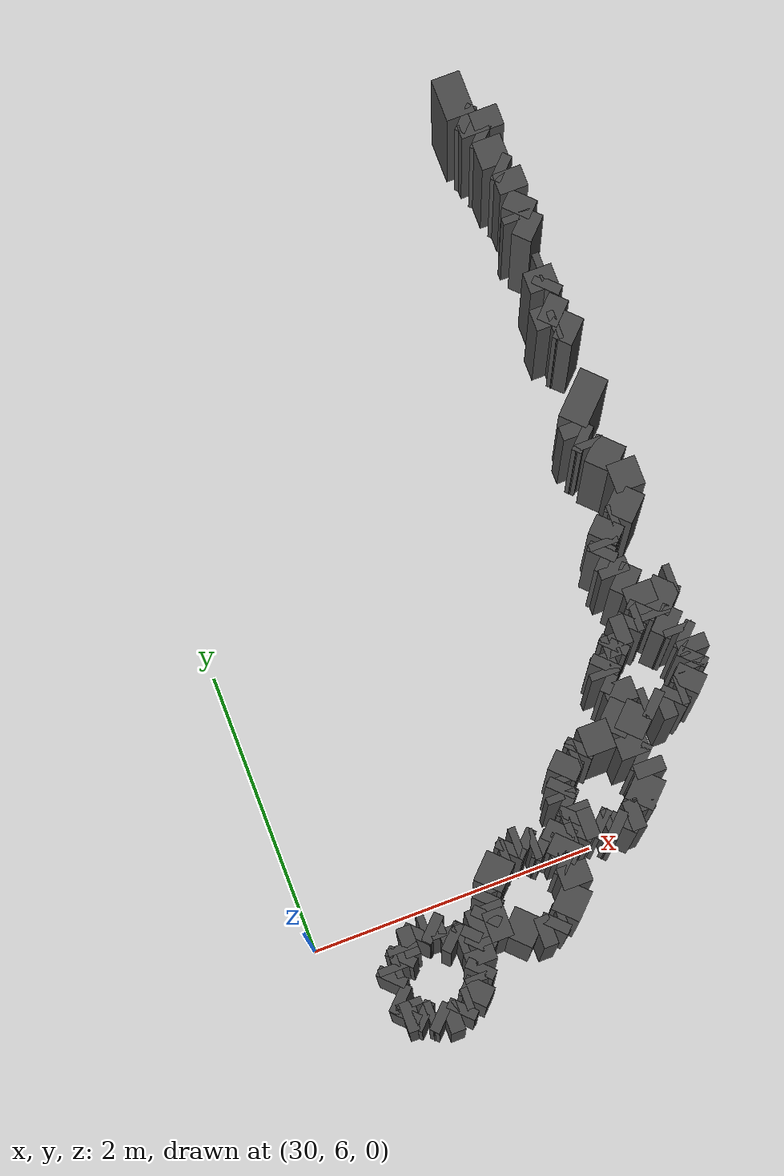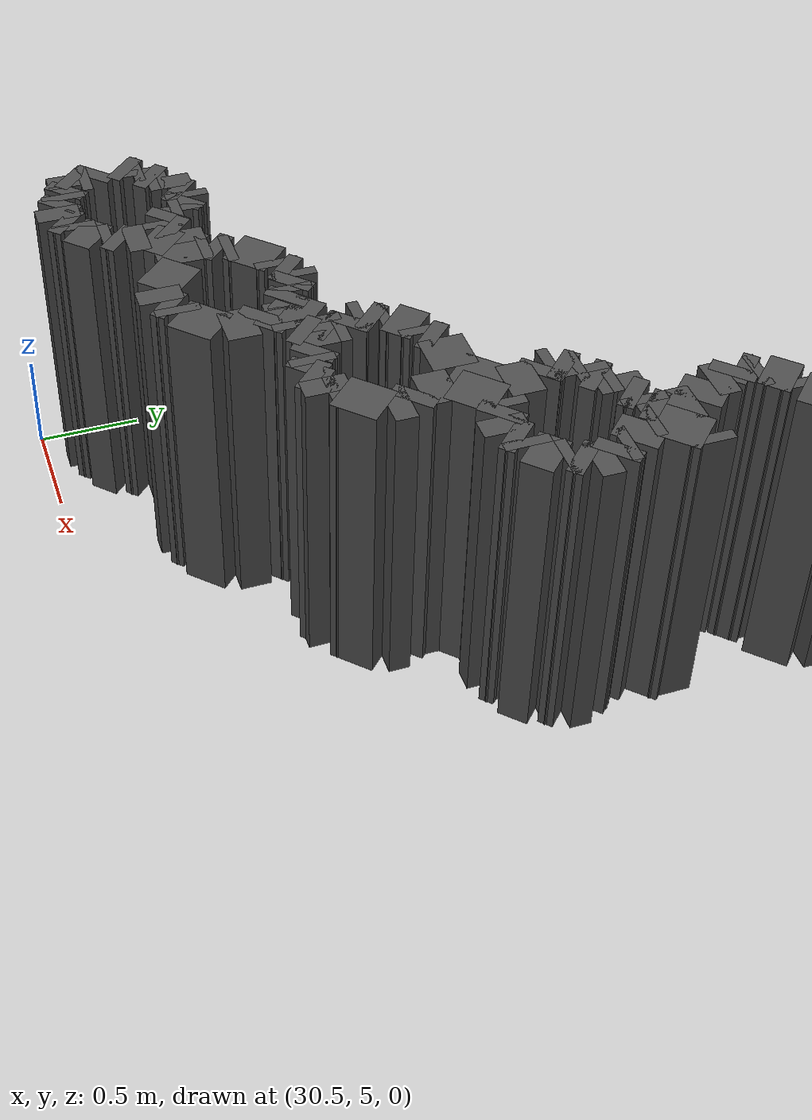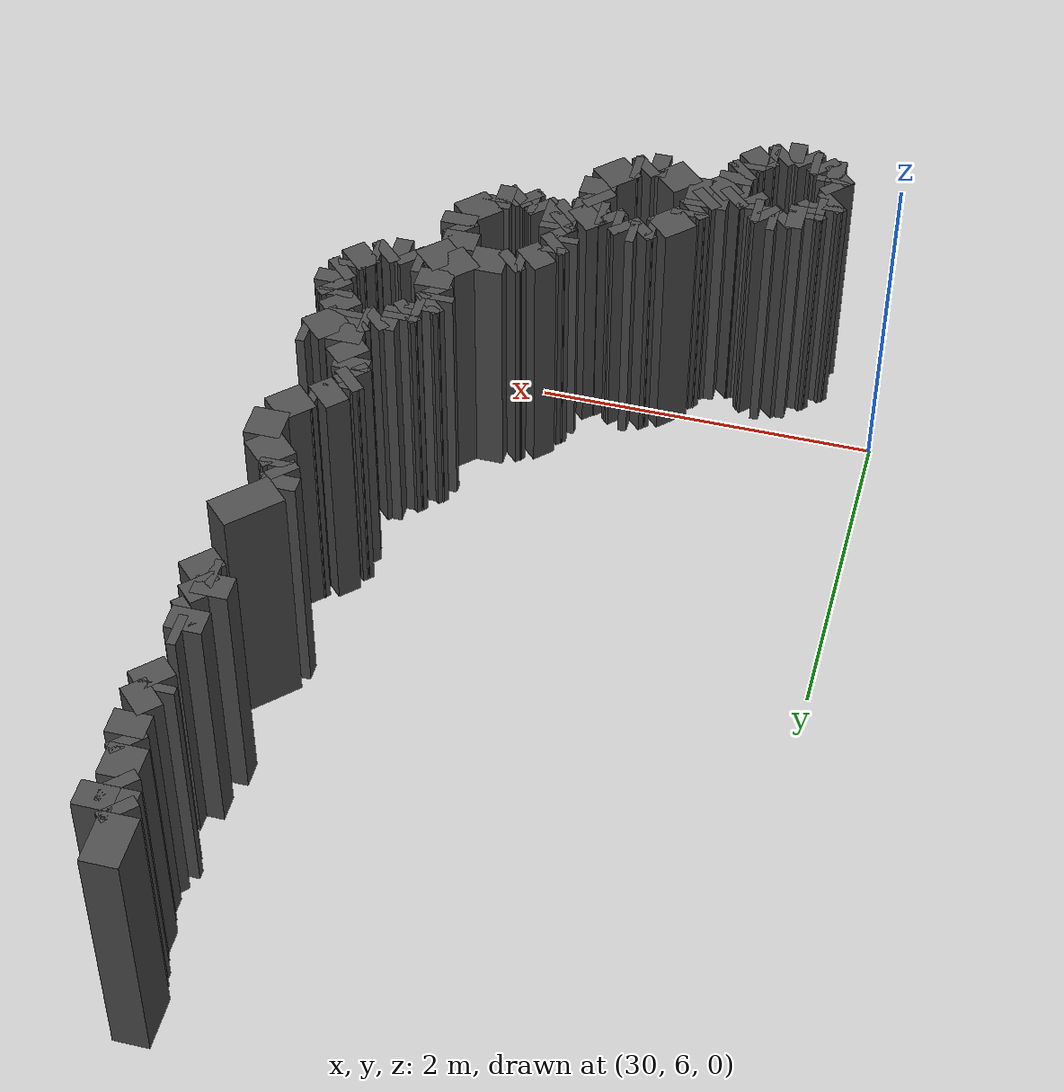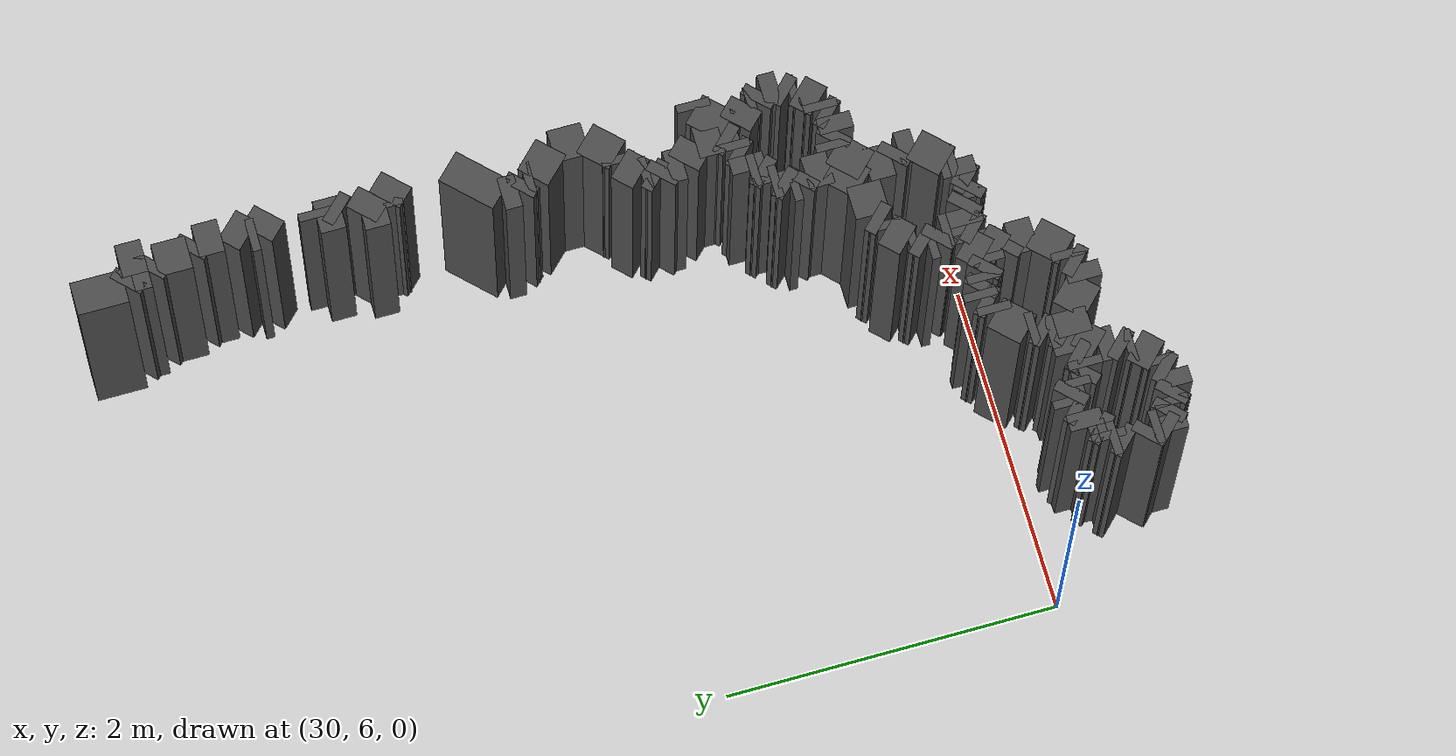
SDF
<sdf version="1.9">
 <model name="generated_walls">
  <static>true</static>
  <link name="wall_161_1346">
   <pose>30.425 5.575 0.75 0 0 0.785</pose>
   <collision name="collision"><geometry><box><size>0.071 0.2 1.5</size></box></geometry></collision>
   <visual name="visual">
    <geometry><box><size>0.071 0.2 1.5</size></box></geometry>
    <material><ambient>0.3 0.3 0.3 1</ambient></material>
   </visual>
  </link>
  <link name="wall_161_1347">
   <pose>30.450 5.625 0.75 0 0 1.571</pose>
   <collision name="collision"><geometry><box><size>0.050 0.2 1.5</size></box></geometry></collision>
   <visual name="visual">
    <geometry><box><size>0.050 0.2 1.5</size></box></geometry>
    <material><ambient>0.3 0.3 0.3 1</ambient></material>
   </visual>
  </link>
  <link name="wall_161_1348">
   <pose>30.475 5.650 0.75 0 0 0.000</pose>
   <collision name="collision"><geometry><box><size>0.050 0.2 1.5</size></box></geometry></collision>
   <visual name="visual">
    <geometry><box><size>0.050 0.2 1.5</size></box></geometry>
    <material><ambient>0.3 0.3 0.3 1</ambient></material>
   </visual>
  </link>
  <link name="wall_161_1349">
   <pose>30.525 5.675 0.75 0 0 0.785</pose>
   <collision name="collision"><geometry><box><size>0.071 0.2 1.5</size></box></geometry></collision>
   <visual name="visual">
    <geometry><box><size>0.071 0.2 1.5</size></box></geometry>
    <material><ambient>0.3 0.3 0.3 1</ambient></material>
   </visual>
  </link>
  <link name="wall_161_1350">
   <pose>30.550 5.725 0.75 0 0 1.571</pose>
   <collision name="collision"><geometry><box><size>0.050 0.2 1.5</size></box></geometry></collision>
   <visual name="visual">
    <geometry><box><size>0.050 0.2 1.5</size></box></geometry>
    <material><ambient>0.3 0.3 0.3 1</ambient></material>
   </visual>
  </link>
  <link name="wall_161_1351">
   <pose>30.600 5.750 0.75 0 0 0.000</pose>
   <collision name="collision"><geometry><box><size>0.100 0.2 1.5</size></box></geometry></collision>
   <visual name="visual">
    <geometry><box><size>0.100 0.2 1.5</size></box></geometry>
    <material><ambient>0.3 0.3 0.3 1</ambient></material>
   </visual>
  </link>
  <link name="wall_161_1352">
   <pose>30.675 5.775 0.75 0 0 0.785</pose>
   <collision name="collision"><geometry><box><size>0.071 0.2 1.5</size></box></geometry></collision>
   <visual name="visual">
    <geometry><box><size>0.071 0.2 1.5</size></box></geometry>
    <material><ambient>0.3 0.3 0.3 1</ambient></material>
   </visual>
  </link>
  <link name="wall_161_1353">
   <pose>30.725 5.800 0.75 0 0 0.000</pose>
   <collision name="collision"><geometry><box><size>0.050 0.2 1.5</size></box></geometry></collision>
   <visual name="visual">
    <geometry><box><size>0.050 0.2 1.5</size></box></geometry>
    <material><ambient>0.3 0.3 0.3 1</ambient></material>
   </visual>
  </link>
  <link name="wall_161_1354">
   <pose>30.775 5.775 0.75 0 0 -0.785</pose>
   <collision name="collision"><geometry><box><size>0.071 0.2 1.5</size></box></geometry></collision>
   <visual name="visual">
    <geometry><box><size>0.071 0.2 1.5</size></box></geometry>
    <material><ambient>0.3 0.3 0.3 1</ambient></material>
   </visual>
  </link>
  <link name="wall_161_1355">
   <pose>30.825 5.750 0.75 0 0 0.000</pose>
   <collision name="collision"><geometry><box><size>0.050 0.2 1.5</size></box></geometry></collision>
   <visual name="visual">
    <geometry><box><size>0.050 0.2 1.5</size></box></geometry>
    <material><ambient>0.3 0.3 0.3 1</ambient></material>
   </visual>
  </link>
  <link name="wall_161_1356">
   <pose>30.850 5.725 0.75 0 0 -1.571</pose>
   <collision name="collision"><geometry><box><size>0.050 0.2 1.5</size></box></geometry></collision>
   <visual name="visual">
    <geometry><box><size>0.050 0.2 1.5</size></box></geometry>
    <material><ambient>0.3 0.3 0.3 1</ambient></material>
   </visual>
  </link>
  <link name="wall_161_1357">
   <pose>30.875 5.675 0.75 0 0 -0.785</pose>
   <collision name="collision"><geometry><box><size>0.071 0.2 1.5</size></box></geometry></collision>
   <visual name="visual">
    <geometry><box><size>0.071 0.2 1.5</size></box></geometry>
    <material><ambient>0.3 0.3 0.3 1</ambient></material>
   </visual>
  </link>
  <link name="wall_161_1358">
   <pose>30.925 5.650 0.75 0 0 0.000</pose>
   <collision name="collision"><geometry><box><size>0.050 0.2 1.5</size></box></geometry></collision>
   <visual name="visual">
    <geometry><box><size>0.050 0.2 1.5</size></box></geometry>
    <material><ambient>0.3 0.3 0.3 1</ambient></material>
   </visual>
  </link>
  <link name="wall_161_1359">
   <pose>30.975 5.675 0.75 0 0 0.785</pose>
   <collision name="collision"><geometry><box><size>0.071 0.2 1.5</size></box></geometry></collision>
   <visual name="visual">
    <geometry><box><size>0.071 0.2 1.5</size></box></geometry>
    <material><ambient>0.3 0.3 0.3 1</ambient></material>
   </visual>
  </link>
  <link name="wall_161_1360">
   <pose>31.050 5.700 0.75 0 0 0.000</pose>
   <collision name="collision"><geometry><box><size>0.100 0.2 1.5</size></box></geometry></collision>
   <visual name="visual">
    <geometry><box><size>0.100 0.2 1.5</size></box></geometry>
    <material><ambient>0.3 0.3 0.3 1</ambient></material>
   </visual>
  </link>
  <link name="wall_161_1361">
   <pose>31.125 5.725 0.75 0 0 0.785</pose>
   <collision name="collision"><geometry><box><size>0.071 0.2 1.5</size></box></geometry></collision>
   <visual name="visual">
    <geometry><box><size>0.071 0.2 1.5</size></box></geometry>
    <material><ambient>0.3 0.3 0.3 1</ambient></material>
   </visual>
  </link>
  <link name="wall_161_1362">
   <pose>31.150 5.775 0.75 0 0 1.571</pose>
   <collision name="collision"><geometry><box><size>0.050 0.2 1.5</size></box></geometry></collision>
   <visual name="visual">
    <geometry><box><size>0.050 0.2 1.5</size></box></geometry>
    <material><ambient>0.3 0.3 0.3 1</ambient></material>
   </visual>
  </link>
  <link name="wall_161_1363">
   <pose>31.175 5.825 0.75 0 0 0.785</pose>
   <collision name="collision"><geometry><box><size>0.071 0.2 1.5</size></box></geometry></collision>
   <visual name="visual">
    <geometry><box><size>0.071 0.2 1.5</size></box></geometry>
    <material><ambient>0.3 0.3 0.3 1</ambient></material>
   </visual>
  </link>
  <link name="wall_161_1364">
   <pose>31.200 5.875 0.75 0 0 1.571</pose>
   <collision name="collision"><geometry><box><size>0.050 0.2 1.5</size></box></geometry></collision>
   <visual name="visual">
    <geometry><box><size>0.050 0.2 1.5</size></box></geometry>
    <material><ambient>0.3 0.3 0.3 1</ambient></material>
   </visual>
  </link>
  <link name="wall_161_1365">
   <pose>31.275 5.975 0.75 0 0 0.785</pose>
   <collision name="collision"><geometry><box><size>0.212 0.2 1.5</size></box></geometry></collision>
   <visual name="visual">
    <geometry><box><size>0.212 0.2 1.5</size></box></geometry>
    <material><ambient>0.3 0.3 0.3 1</ambient></material>
   </visual>
  </link>
  <link name="wall_161_1366">
   <pose>31.375 6.050 0.75 0 0 0.000</pose>
   <collision name="collision"><geometry><box><size>0.050 0.2 1.5</size></box></geometry></collision>
   <visual name="visual">
    <geometry><box><size>0.050 0.2 1.5</size></box></geometry>
    <material><ambient>0.3 0.3 0.3 1</ambient></material>
   </visual>
  </link>
  <link name="wall_161_1367">
   <pose>31.425 6.075 0.75 0 0 0.785</pose>
   <collision name="collision"><geometry><box><size>0.071 0.2 1.5</size></box></geometry></collision>
   <visual name="visual">
    <geometry><box><size>0.071 0.2 1.5</size></box></geometry>
    <material><ambient>0.3 0.3 0.3 1</ambient></material>
   </visual>
  </link>
  <link name="wall_161_1368">
   <pose>31.475 6.100 0.75 0 0 0.000</pose>
   <collision name="collision"><geometry><box><size>0.050 0.2 1.5</size></box></geometry></collision>
   <visual name="visual">
    <geometry><box><size>0.050 0.2 1.5</size></box></geometry>
    <material><ambient>0.3 0.3 0.3 1</ambient></material>
   </visual>
  </link>
  <link name="wall_161_1369">
   <pose>31.525 6.075 0.75 0 0 -0.785</pose>
   <collision name="collision"><geometry><box><size>0.071 0.2 1.5</size></box></geometry></collision>
   <visual name="visual">
    <geometry><box><size>0.071 0.2 1.5</size></box></geometry>
    <material><ambient>0.3 0.3 0.3 1</ambient></material>
   </visual>
  </link>
  <link name="wall_161_1370">
   <pose>31.575 6.050 0.75 0 0 0.000</pose>
   <collision name="collision"><geometry><box><size>0.050 0.2 1.5</size></box></geometry></collision>
   <visual name="visual">
    <geometry><box><size>0.050 0.2 1.5</size></box></geometry>
    <material><ambient>0.3 0.3 0.3 1</ambient></material>
   </visual>
  </link>
  <link name="wall_161_1371">
   <pose>31.625 6.025 0.75 0 0 -0.785</pose>
   <collision name="collision"><geometry><box><size>0.071 0.2 1.5</size></box></geometry></collision>
   <visual name="visual">
    <geometry><box><size>0.071 0.2 1.5</size></box></geometry>
    <material><ambient>0.3 0.3 0.3 1</ambient></material>
   </visual>
  </link>
  <link name="wall_161_1372">
   <pose>31.675 6.000 0.75 0 0 0.000</pose>
   <collision name="collision"><geometry><box><size>0.050 0.2 1.5</size></box></geometry></collision>
   <visual name="visual">
    <geometry><box><size>0.050 0.2 1.5</size></box></geometry>
    <material><ambient>0.3 0.3 0.3 1</ambient></material>
   </visual>
  </link>
  <link name="wall_161_1373">
   <pose>31.750 6.050 0.75 0 0 0.785</pose>
   <collision name="collision"><geometry><box><size>0.141 0.2 1.5</size></box></geometry></collision>
   <visual name="visual">
    <geometry><box><size>0.141 0.2 1.5</size></box></geometry>
    <material><ambient>0.3 0.3 0.3 1</ambient></material>
   </visual>
  </link>
  <link name="wall_161_1374">
   <pose>31.825 6.100 0.75 0 0 0.000</pose>
   <collision name="collision"><geometry><box><size>0.050 0.2 1.5</size></box></geometry></collision>
   <visual name="visual">
    <geometry><box><size>0.050 0.2 1.5</size></box></geometry>
    <material><ambient>0.3 0.3 0.3 1</ambient></material>
   </visual>
  </link>
  <link name="wall_161_1375">
   <pose>31.875 6.125 0.75 0 0 0.785</pose>
   <collision name="collision"><geometry><box><size>0.071 0.2 1.5</size></box></geometry></collision>
   <visual name="visual">
    <geometry><box><size>0.071 0.2 1.5</size></box></geometry>
    <material><ambient>0.3 0.3 0.3 1</ambient></material>
   </visual>
  </link>
  <link name="wall_161_1376">
   <pose>31.900 6.175 0.75 0 0 1.571</pose>
   <collision name="collision"><geometry><box><size>0.050 0.2 1.5</size></box></geometry></collision>
   <visual name="visual">
    <geometry><box><size>0.050 0.2 1.5</size></box></geometry>
    <material><ambient>0.3 0.3 0.3 1</ambient></material>
   </visual>
  </link>
  <link name="wall_161_1377">
   <pose>31.875 6.225 0.75 0 0 2.356</pose>
   <collision name="collision"><geometry><box><size>0.071 0.2 1.5</size></box></geometry></collision>
   <visual name="visual">
    <geometry><box><size>0.071 0.2 1.5</size></box></geometry>
    <material><ambient>0.3 0.3 0.3 1</ambient></material>
   </visual>
  </link>
  <link name="wall_161_1378">
   <pose>31.850 6.275 0.75 0 0 1.571</pose>
   <collision name="collision"><geometry><box><size>0.050 0.2 1.5</size></box></geometry></collision>
   <visual name="visual">
    <geometry><box><size>0.050 0.2 1.5</size></box></geometry>
    <material><ambient>0.3 0.3 0.3 1</ambient></material>
   </visual>
  </link>
  <link name="wall_161_1379">
   <pose>31.875 6.325 0.75 0 0 0.785</pose>
   <collision name="collision"><geometry><box><size>0.071 0.2 1.5</size></box></geometry></collision>
   <visual name="visual">
    <geometry><box><size>0.071 0.2 1.5</size></box></geometry>
    <material><ambient>0.3 0.3 0.3 1</ambient></material>
   </visual>
  </link>
  <link name="wall_161_1380">
   <pose>31.900 6.375 0.75 0 0 1.571</pose>
   <collision name="collision"><geometry><box><size>0.050 0.2 1.5</size></box></geometry></collision>
   <visual name="visual">
    <geometry><box><size>0.050 0.2 1.5</size></box></geometry>
    <material><ambient>0.3 0.3 0.3 1</ambient></material>
   </visual>
  </link>
  <link name="wall_161_1381">
   <pose>31.950 6.450 0.75 0 0 0.785</pose>
   <collision name="collision"><geometry><box><size>0.141 0.2 1.5</size></box></geometry></collision>
   <visual name="visual">
    <geometry><box><size>0.141 0.2 1.5</size></box></geometry>
    <material><ambient>0.3 0.3 0.3 1</ambient></material>
   </visual>
  </link>
  <link name="wall_161_1382">
   <pose>32.025 6.500 0.75 0 0 0.000</pose>
   <collision name="collision"><geometry><box><size>0.050 0.2 1.5</size></box></geometry></collision>
   <visual name="visual">
    <geometry><box><size>0.050 0.2 1.5</size></box></geometry>
    <material><ambient>0.3 0.3 0.3 1</ambient></material>
   </visual>
  </link>
  <link name="wall_161_1383">
   <pose>32.075 6.525 0.75 0 0 0.785</pose>
   <collision name="collision"><geometry><box><size>0.071 0.2 1.5</size></box></geometry></collision>
   <visual name="visual">
    <geometry><box><size>0.071 0.2 1.5</size></box></geometry>
    <material><ambient>0.3 0.3 0.3 1</ambient></material>
   </visual>
  </link>
  <link name="wall_161_1384">
   <pose>32.200 6.550 0.75 0 0 0.000</pose>
   <collision name="collision"><geometry><box><size>0.200 0.2 1.5</size></box></geometry></collision>
   <visual name="visual">
    <geometry><box><size>0.200 0.2 1.5</size></box></geometry>
    <material><ambient>0.3 0.3 0.3 1</ambient></material>
   </visual>
  </link>
  <link name="wall_161_1385">
   <pose>32.375 6.625 0.75 0 0 0.785</pose>
   <collision name="collision"><geometry><box><size>0.212 0.2 1.5</size></box></geometry></collision>
   <visual name="visual">
    <geometry><box><size>0.212 0.2 1.5</size></box></geometry>
    <material><ambient>0.3 0.3 0.3 1</ambient></material>
   </visual>
  </link>
  <link name="wall_161_1386">
   <pose>32.450 6.775 0.75 0 0 1.571</pose>
   <collision name="collision"><geometry><box><size>0.150 0.2 1.5</size></box></geometry></collision>
   <visual name="visual">
    <geometry><box><size>0.150 0.2 1.5</size></box></geometry>
    <material><ambient>0.3 0.3 0.3 1</ambient></material>
   </visual>
  </link>
  <link name="wall_161_1387">
   <pose>32.425 6.875 0.75 0 0 2.356</pose>
   <collision name="collision"><geometry><box><size>0.071 0.2 1.5</size></box></geometry></collision>
   <visual name="visual">
    <geometry><box><size>0.071 0.2 1.5</size></box></geometry>
    <material><ambient>0.3 0.3 0.3 1</ambient></material>
   </visual>
  </link>
  <link name="wall_161_1388">
   <pose>32.400 6.925 0.75 0 0 1.571</pose>
   <collision name="collision"><geometry><box><size>0.050 0.2 1.5</size></box></geometry></collision>
   <visual name="visual">
    <geometry><box><size>0.050 0.2 1.5</size></box></geometry>
    <material><ambient>0.3 0.3 0.3 1</ambient></material>
   </visual>
  </link>
  <link name="wall_161_1389">
   <pose>32.425 6.975 0.75 0 0 0.785</pose>
   <collision name="collision"><geometry><box><size>0.071 0.2 1.5</size></box></geometry></collision>
   <visual name="visual">
    <geometry><box><size>0.071 0.2 1.5</size></box></geometry>
    <material><ambient>0.3 0.3 0.3 1</ambient></material>
   </visual>
  </link>
  <link name="wall_161_1390">
   <pose>32.450 7.025 0.75 0 0 1.571</pose>
   <collision name="collision"><geometry><box><size>0.050 0.2 1.5</size></box></geometry></collision>
   <visual name="visual">
    <geometry><box><size>0.050 0.2 1.5</size></box></geometry>
    <material><ambient>0.3 0.3 0.3 1</ambient></material>
   </visual>
  </link>
  <link name="wall_161_1391">
   <pose>32.475 7.050 0.75 0 0 0.000</pose>
   <collision name="collision"><geometry><box><size>0.050 0.2 1.5</size></box></geometry></collision>
   <visual name="visual">
    <geometry><box><size>0.050 0.2 1.5</size></box></geometry>
    <material><ambient>0.3 0.3 0.3 1</ambient></material>
   </visual>
  </link>
  <link name="wall_161_1392">
   <pose>32.525 7.075 0.75 0 0 0.785</pose>
   <collision name="collision"><geometry><box><size>0.071 0.2 1.5</size></box></geometry></collision>
   <visual name="visual">
    <geometry><box><size>0.071 0.2 1.5</size></box></geometry>
    <material><ambient>0.3 0.3 0.3 1</ambient></material>
   </visual>
  </link>
  <link name="wall_161_1393">
   <pose>32.550 7.125 0.75 0 0 1.571</pose>
   <collision name="collision"><geometry><box><size>0.050 0.2 1.5</size></box></geometry></collision>
   <visual name="visual">
    <geometry><box><size>0.050 0.2 1.5</size></box></geometry>
    <material><ambient>0.3 0.3 0.3 1</ambient></material>
   </visual>
  </link>
  <link name="wall_161_1394">
   <pose>32.600 7.150 0.75 0 0 0.000</pose>
   <collision name="collision"><geometry><box><size>0.100 0.2 1.5</size></box></geometry></collision>
   <visual name="visual">
    <geometry><box><size>0.100 0.2 1.5</size></box></geometry>
    <material><ambient>0.3 0.3 0.3 1</ambient></material>
   </visual>
  </link>
  <link name="wall_161_1395">
   <pose>32.675 7.175 0.75 0 0 0.785</pose>
   <collision name="collision"><geometry><box><size>0.071 0.2 1.5</size></box></geometry></collision>
   <visual name="visual">
    <geometry><box><size>0.071 0.2 1.5</size></box></geometry>
    <material><ambient>0.3 0.3 0.3 1</ambient></material>
   </visual>
  </link>
  <link name="wall_161_1396">
   <pose>32.725 7.200 0.75 0 0 0.000</pose>
   <collision name="collision"><geometry><box><size>0.050 0.2 1.5</size></box></geometry></collision>
   <visual name="visual">
    <geometry><box><size>0.050 0.2 1.5</size></box></geometry>
    <material><ambient>0.3 0.3 0.3 1</ambient></material>
   </visual>
  </link>
  <link name="wall_161_1397">
   <pose>32.775 7.225 0.75 0 0 0.785</pose>
   <collision name="collision"><geometry><box><size>0.071 0.2 1.5</size></box></geometry></collision>
   <visual name="visual">
    <geometry><box><size>0.071 0.2 1.5</size></box></geometry>
    <material><ambient>0.3 0.3 0.3 1</ambient></material>
   </visual>
  </link>
  <link name="wall_161_1398">
   <pose>32.800 7.325 0.75 0 0 1.571</pose>
   <collision name="collision"><geometry><box><size>0.150 0.2 1.5</size></box></geometry></collision>
   <visual name="visual">
    <geometry><box><size>0.150 0.2 1.5</size></box></geometry>
    <material><ambient>0.3 0.3 0.3 1</ambient></material>
   </visual>
  </link>
  <link name="wall_161_1399">
   <pose>32.750 7.450 0.75 0 0 2.356</pose>
   <collision name="collision"><geometry><box><size>0.141 0.2 1.5</size></box></geometry></collision>
   <visual name="visual">
    <geometry><box><size>0.141 0.2 1.5</size></box></geometry>
    <material><ambient>0.3 0.3 0.3 1</ambient></material>
   </visual>
  </link>
  <link name="wall_161_1400">
   <pose>32.700 7.550 0.75 0 0 1.571</pose>
   <collision name="collision"><geometry><box><size>0.100 0.2 1.5</size></box></geometry></collision>
   <visual name="visual">
    <geometry><box><size>0.100 0.2 1.5</size></box></geometry>
    <material><ambient>0.3 0.3 0.3 1</ambient></material>
   </visual>
  </link>
  <link name="wall_161_1401">
   <pose>32.675 7.625 0.75 0 0 2.356</pose>
   <collision name="collision"><geometry><box><size>0.071 0.2 1.5</size></box></geometry></collision>
   <visual name="visual">
    <geometry><box><size>0.071 0.2 1.5</size></box></geometry>
    <material><ambient>0.3 0.3 0.3 1</ambient></material>
   </visual>
  </link>
  <link name="wall_161_1402">
   <pose>32.675 7.675 0.75 0 0 0.785</pose>
   <collision name="collision"><geometry><box><size>0.071 0.2 1.5</size></box></geometry></collision>
   <visual name="visual">
    <geometry><box><size>0.071 0.2 1.5</size></box></geometry>
    <material><ambient>0.3 0.3 0.3 1</ambient></material>
   </visual>
  </link>
  <link name="wall_161_1403">
   <pose>32.700 7.725 0.75 0 0 1.571</pose>
   <collision name="collision"><geometry><box><size>0.050 0.2 1.5</size></box></geometry></collision>
   <visual name="visual">
    <geometry><box><size>0.050 0.2 1.5</size></box></geometry>
    <material><ambient>0.3 0.3 0.3 1</ambient></material>
   </visual>
  </link>
  <link name="wall_161_1404">
   <pose>32.750 7.800 0.75 0 0 0.785</pose>
   <collision name="collision"><geometry><box><size>0.141 0.2 1.5</size></box></geometry></collision>
   <visual name="visual">
    <geometry><box><size>0.141 0.2 1.5</size></box></geometry>
    <material><ambient>0.3 0.3 0.3 1</ambient></material>
   </visual>
  </link>
  <link name="wall_161_1405">
   <pose>32.825 7.850 0.75 0 0 0.000</pose>
   <collision name="collision"><geometry><box><size>0.050 0.2 1.5</size></box></geometry></collision>
   <visual name="visual">
    <geometry><box><size>0.050 0.2 1.5</size></box></geometry>
    <material><ambient>0.3 0.3 0.3 1</ambient></material>
   </visual>
  </link>
  <link name="wall_161_1406">
   <pose>32.925 7.925 0.75 0 0 0.785</pose>
   <collision name="collision"><geometry><box><size>0.212 0.2 1.5</size></box></geometry></collision>
   <visual name="visual">
    <geometry><box><size>0.212 0.2 1.5</size></box></geometry>
    <material><ambient>0.3 0.3 0.3 1</ambient></material>
   </visual>
  </link>
  <link name="wall_161_1407">
   <pose>33.000 8.100 0.75 0 0 1.571</pose>
   <collision name="collision"><geometry><box><size>0.200 0.2 1.5</size></box></geometry></collision>
   <visual name="visual">
    <geometry><box><size>0.200 0.2 1.5</size></box></geometry>
    <material><ambient>0.3 0.3 0.3 1</ambient></material>
   </visual>
  </link>
  <link name="wall_161_1408">
   <pose>32.925 8.275 0.75 0 0 2.356</pose>
   <collision name="collision"><geometry><box><size>0.212 0.2 1.5</size></box></geometry></collision>
   <visual name="visual">
    <geometry><box><size>0.212 0.2 1.5</size></box></geometry>
    <material><ambient>0.3 0.3 0.3 1</ambient></material>
   </visual>
  </link>
  <link name="wall_161_1409">
   <pose>32.850 8.375 0.75 0 0 1.571</pose>
   <collision name="collision"><geometry><box><size>0.050 0.2 1.5</size></box></geometry></collision>
   <visual name="visual">
    <geometry><box><size>0.050 0.2 1.5</size></box></geometry>
    <material><ambient>0.3 0.3 0.3 1</ambient></material>
   </visual>
  </link>
  <link name="wall_161_1410">
   <pose>32.825 8.425 0.75 0 0 2.356</pose>
   <collision name="collision"><geometry><box><size>0.071 0.2 1.5</size></box></geometry></collision>
   <visual name="visual">
    <geometry><box><size>0.071 0.2 1.5</size></box></geometry>
    <material><ambient>0.3 0.3 0.3 1</ambient></material>
   </visual>
  </link>
  <link name="wall_161_1411">
   <pose>32.800 8.500 0.75 0 0 1.571</pose>
   <collision name="collision"><geometry><box><size>0.100 0.2 1.5</size></box></geometry></collision>
   <visual name="visual">
    <geometry><box><size>0.100 0.2 1.5</size></box></geometry>
    <material><ambient>0.3 0.3 0.3 1</ambient></material>
   </visual>
  </link>
  <link name="wall_161_1412">
   <pose>32.925 8.675 0.75 0 0 0.785</pose>
   <collision name="collision"><geometry><box><size>0.354 0.2 1.5</size></box></geometry></collision>
   <visual name="visual">
    <geometry><box><size>0.354 0.2 1.5</size></box></geometry>
    <material><ambient>0.3 0.3 0.3 1</ambient></material>
   </visual>
  </link>
  <link name="wall_161_1414">
   <pose>33.000 9.150 0.75 0 0 2.356</pose>
   <collision name="collision"><geometry><box><size>0.141 0.2 1.5</size></box></geometry></collision>
   <visual name="visual">
    <geometry><box><size>0.141 0.2 1.5</size></box></geometry>
    <material><ambient>0.3 0.3 0.3 1</ambient></material>
   </visual>
  </link>
  <link name="wall_161_1415">
   <pose>32.925 9.200 0.75 0 0 3.142</pose>
   <collision name="collision"><geometry><box><size>0.050 0.2 1.5</size></box></geometry></collision>
   <visual name="visual">
    <geometry><box><size>0.050 0.2 1.5</size></box></geometry>
    <material><ambient>0.3 0.3 0.3 1</ambient></material>
   </visual>
  </link>
  <link name="wall_161_1416">
   <pose>32.900 9.275 0.75 0 0 1.571</pose>
   <collision name="collision"><geometry><box><size>0.150 0.2 1.5</size></box></geometry></collision>
   <visual name="visual">
    <geometry><box><size>0.150 0.2 1.5</size></box></geometry>
    <material><ambient>0.3 0.3 0.3 1</ambient></material>
   </visual>
  </link>
  <link name="wall_161_1417">
   <pose>32.950 9.300 0.75 0 0 -0.785</pose>
   <collision name="collision"><geometry><box><size>0.141 0.2 1.5</size></box></geometry></collision>
   <visual name="visual">
    <geometry><box><size>0.141 0.2 1.5</size></box></geometry>
    <material><ambient>0.3 0.3 0.3 1</ambient></material>
   </visual>
  </link>
  <link name="wall_161_1421">
   <pose>32.975 9.475 0.75 0 0 -2.356</pose>
   <collision name="collision"><geometry><box><size>0.071 0.2 1.5</size></box></geometry></collision>
   <visual name="visual">
    <geometry><box><size>0.071 0.2 1.5</size></box></geometry>
    <material><ambient>0.3 0.3 0.3 1</ambient></material>
   </visual>
  </link>
  <link name="wall_161_1422">
   <pose>32.950 9.525 0.75 0 0 1.571</pose>
   <collision name="collision"><geometry><box><size>0.150 0.2 1.5</size></box></geometry></collision>
   <visual name="visual">
    <geometry><box><size>0.150 0.2 1.5</size></box></geometry>
    <material><ambient>0.3 0.3 0.3 1</ambient></material>
   </visual>
  </link>
  <link name="wall_161_1423">
   <pose>32.975 9.600 0.75 0 0 0.000</pose>
   <collision name="collision"><geometry><box><size>0.050 0.2 1.5</size></box></geometry></collision>
   <visual name="visual">
    <geometry><box><size>0.050 0.2 1.5</size></box></geometry>
    <material><ambient>0.3 0.3 0.3 1</ambient></material>
   </visual>
  </link>
  <link name="wall_161_1426">
   <pose>33.000 9.900 0.75 0 0 2.356</pose>
   <collision name="collision"><geometry><box><size>0.141 0.2 1.5</size></box></geometry></collision>
   <visual name="visual">
    <geometry><box><size>0.141 0.2 1.5</size></box></geometry>
    <material><ambient>0.3 0.3 0.3 1</ambient></material>
   </visual>
  </link>
  <link name="wall_161_1427">
   <pose>32.950 9.975 0.75 0 0 1.571</pose>
   <collision name="collision"><geometry><box><size>0.050 0.2 1.5</size></box></geometry></collision>
   <visual name="visual">
    <geometry><box><size>0.050 0.2 1.5</size></box></geometry>
    <material><ambient>0.3 0.3 0.3 1</ambient></material>
   </visual>
  </link>
  <link name="wall_161_1428">
   <pose>33.000 10.050 0.75 0 0 0.785</pose>
   <collision name="collision"><geometry><box><size>0.141 0.2 1.5</size></box></geometry></collision>
   <visual name="visual">
    <geometry><box><size>0.141 0.2 1.5</size></box></geometry>
    <material><ambient>0.3 0.3 0.3 1</ambient></material>
   </visual>
  </link>
  <link name="wall_161_1430">
   <pose>33.000 10.225 0.75 0 0 1.571</pose>
   <collision name="collision"><geometry><box><size>0.150 0.2 1.5</size></box></geometry></collision>
   <visual name="visual">
    <geometry><box><size>0.150 0.2 1.5</size></box></geometry>
    <material><ambient>0.3 0.3 0.3 1</ambient></material>
   </visual>
  </link>
  <link name="wall_161_1431">
   <pose>32.975 10.325 0.75 0 0 2.356</pose>
   <collision name="collision"><geometry><box><size>0.071 0.2 1.5</size></box></geometry></collision>
   <visual name="visual">
    <geometry><box><size>0.071 0.2 1.5</size></box></geometry>
    <material><ambient>0.3 0.3 0.3 1</ambient></material>
   </visual>
  </link>
  <link name="wall_161_1432">
   <pose>32.950 10.450 0.75 0 0 1.571</pose>
   <collision name="collision"><geometry><box><size>0.200 0.2 1.5</size></box></geometry></collision>
   <visual name="visual">
    <geometry><box><size>0.200 0.2 1.5</size></box></geometry>
    <material><ambient>0.3 0.3 0.3 1</ambient></material>
   </visual>
  </link>
  <link name="wall_161_1433">
   <pose>32.925 10.575 0.75 0 0 2.356</pose>
   <collision name="collision"><geometry><box><size>0.071 0.2 1.5</size></box></geometry></collision>
   <visual name="visual">
    <geometry><box><size>0.071 0.2 1.5</size></box></geometry>
    <material><ambient>0.3 0.3 0.3 1</ambient></material>
   </visual>
  </link>
  <link name="wall_161_1434">
   <pose>32.900 10.650 0.75 0 0 1.571</pose>
   <collision name="collision"><geometry><box><size>0.100 0.2 1.5</size></box></geometry></collision>
   <visual name="visual">
    <geometry><box><size>0.100 0.2 1.5</size></box></geometry>
    <material><ambient>0.3 0.3 0.3 1</ambient></material>
   </visual>
  </link>
  <link name="wall_161_1435">
   <pose>32.875 10.725 0.75 0 0 2.356</pose>
   <collision name="collision"><geometry><box><size>0.071 0.2 1.5</size></box></geometry></collision>
   <visual name="visual">
    <geometry><box><size>0.071 0.2 1.5</size></box></geometry>
    <material><ambient>0.3 0.3 0.3 1</ambient></material>
   </visual>
  </link>
  <link name="wall_161_1436">
   <pose>32.850 10.900 0.75 0 0 1.571</pose>
   <collision name="collision"><geometry><box><size>0.300 0.2 1.5</size></box></geometry></collision>
   <visual name="visual">
    <geometry><box><size>0.300 0.2 1.5</size></box></geometry>
    <material><ambient>0.3 0.3 0.3 1</ambient></material>
   </visual>
  </link>
  <link name="wall_161_2732">
   <pose>33.000 10.675 0.75 0 0 -1.571</pose>
   <collision name="collision"><geometry><box><size>0.150 0.2 1.5</size></box></geometry></collision>
   <visual name="visual">
    <geometry><box><size>0.150 0.2 1.5</size></box></geometry>
    <material><ambient>0.3 0.3 0.3 1</ambient></material>
   </visual>
  </link>
  <link name="wall_161_2779">
   <pose>33.025 7.350 0.75 0 0 3.142</pose>
   <collision name="collision"><geometry><box><size>0.050 0.2 1.5</size></box></geometry></collision>
   <visual name="visual">
    <geometry><box><size>0.050 0.2 1.5</size></box></geometry>
    <material><ambient>0.3 0.3 0.3 1</ambient></material>
   </visual>
  </link>
  <link name="wall_161_2780">
   <pose>32.925 7.275 0.75 0 0 -2.356</pose>
   <collision name="collision"><geometry><box><size>0.212 0.2 1.5</size></box></geometry></collision>
   <visual name="visual">
    <geometry><box><size>0.212 0.2 1.5</size></box></geometry>
    <material><ambient>0.3 0.3 0.3 1</ambient></material>
   </visual>
  </link>
  <link name="wall_161_2781">
   <pose>32.850 7.175 0.75 0 0 -1.571</pose>
   <collision name="collision"><geometry><box><size>0.050 0.2 1.5</size></box></geometry></collision>
   <visual name="visual">
    <geometry><box><size>0.050 0.2 1.5</size></box></geometry>
    <material><ambient>0.3 0.3 0.3 1</ambient></material>
   </visual>
  </link>
  <link name="wall_161_2782">
   <pose>32.900 7.100 0.75 0 0 -0.785</pose>
   <collision name="collision"><geometry><box><size>0.141 0.2 1.5</size></box></geometry></collision>
   <visual name="visual">
    <geometry><box><size>0.141 0.2 1.5</size></box></geometry>
    <material><ambient>0.3 0.3 0.3 1</ambient></material>
   </visual>
  </link>
  <link name="wall_161_2783">
   <pose>32.950 7.025 0.75 0 0 -1.571</pose>
   <collision name="collision"><geometry><box><size>0.050 0.2 1.5</size></box></geometry></collision>
   <visual name="visual">
    <geometry><box><size>0.050 0.2 1.5</size></box></geometry>
    <material><ambient>0.3 0.3 0.3 1</ambient></material>
   </visual>
  </link>
  <link name="wall_161_2784">
   <pose>32.975 6.975 0.75 0 0 -0.785</pose>
   <collision name="collision"><geometry><box><size>0.071 0.2 1.5</size></box></geometry></collision>
   <visual name="visual">
    <geometry><box><size>0.071 0.2 1.5</size></box></geometry>
    <material><ambient>0.3 0.3 0.3 1</ambient></material>
   </visual>
  </link>
  <link name="wall_161_2785">
   <pose>33.000 6.900 0.75 0 0 -1.571</pose>
   <collision name="collision"><geometry><box><size>0.100 0.2 1.5</size></box></geometry></collision>
   <visual name="visual">
    <geometry><box><size>0.100 0.2 1.5</size></box></geometry>
    <material><ambient>0.3 0.3 0.3 1</ambient></material>
   </visual>
  </link>
  <link name="wall_161_2786">
   <pose>32.975 6.825 0.75 0 0 -2.356</pose>
   <collision name="collision"><geometry><box><size>0.071 0.2 1.5</size></box></geometry></collision>
   <visual name="visual">
    <geometry><box><size>0.071 0.2 1.5</size></box></geometry>
    <material><ambient>0.3 0.3 0.3 1</ambient></material>
   </visual>
  </link>
  <link name="wall_161_2787">
   <pose>32.950 6.775 0.75 0 0 -1.571</pose>
   <collision name="collision"><geometry><box><size>0.050 0.2 1.5</size></box></geometry></collision>
   <visual name="visual">
    <geometry><box><size>0.050 0.2 1.5</size></box></geometry>
    <material><ambient>0.3 0.3 0.3 1</ambient></material>
   </visual>
  </link>
  <link name="wall_161_2788">
   <pose>32.900 6.700 0.75 0 0 -2.356</pose>
   <collision name="collision"><geometry><box><size>0.141 0.2 1.5</size></box></geometry></collision>
   <visual name="visual">
    <geometry><box><size>0.141 0.2 1.5</size></box></geometry>
    <material><ambient>0.3 0.3 0.3 1</ambient></material>
   </visual>
  </link>
  <link name="wall_161_2789">
   <pose>32.825 6.650 0.75 0 0 3.142</pose>
   <collision name="collision"><geometry><box><size>0.050 0.2 1.5</size></box></geometry></collision>
   <visual name="visual">
    <geometry><box><size>0.050 0.2 1.5</size></box></geometry>
    <material><ambient>0.3 0.3 0.3 1</ambient></material>
   </visual>
  </link>
  <link name="wall_161_2790">
   <pose>32.775 6.625 0.75 0 0 -2.356</pose>
   <collision name="collision"><geometry><box><size>0.071 0.2 1.5</size></box></geometry></collision>
   <visual name="visual">
    <geometry><box><size>0.071 0.2 1.5</size></box></geometry>
    <material><ambient>0.3 0.3 0.3 1</ambient></material>
   </visual>
  </link>
  <link name="wall_161_2791">
   <pose>32.700 6.600 0.75 0 0 3.142</pose>
   <collision name="collision"><geometry><box><size>0.100 0.2 1.5</size></box></geometry></collision>
   <visual name="visual">
    <geometry><box><size>0.100 0.2 1.5</size></box></geometry>
    <material><ambient>0.3 0.3 0.3 1</ambient></material>
   </visual>
  </link>
  <link name="wall_161_2792">
   <pose>32.625 6.625 0.75 0 0 2.356</pose>
   <collision name="collision"><geometry><box><size>0.071 0.2 1.5</size></box></geometry></collision>
   <visual name="visual">
    <geometry><box><size>0.071 0.2 1.5</size></box></geometry>
    <material><ambient>0.3 0.3 0.3 1</ambient></material>
   </visual>
  </link>
  <link name="wall_161_2793">
   <pose>32.575 6.650 0.75 0 0 3.142</pose>
   <collision name="collision"><geometry><box><size>0.050 0.2 1.5</size></box></geometry></collision>
   <visual name="visual">
    <geometry><box><size>0.050 0.2 1.5</size></box></geometry>
    <material><ambient>0.3 0.3 0.3 1</ambient></material>
   </visual>
  </link>
  <link name="wall_161_2794">
   <pose>32.475 6.575 0.75 0 0 -2.356</pose>
   <collision name="collision"><geometry><box><size>0.212 0.2 1.5</size></box></geometry></collision>
   <visual name="visual">
    <geometry><box><size>0.212 0.2 1.5</size></box></geometry>
    <material><ambient>0.3 0.3 0.3 1</ambient></material>
   </visual>
  </link>
  <link name="wall_161_2795">
   <pose>32.400 6.425 0.75 0 0 -1.571</pose>
   <collision name="collision"><geometry><box><size>0.150 0.2 1.5</size></box></geometry></collision>
   <visual name="visual">
    <geometry><box><size>0.150 0.2 1.5</size></box></geometry>
    <material><ambient>0.3 0.3 0.3 1</ambient></material>
   </visual>
  </link>
  <link name="wall_161_2796">
   <pose>32.425 6.325 0.75 0 0 -0.785</pose>
   <collision name="collision"><geometry><box><size>0.071 0.2 1.5</size></box></geometry></collision>
   <visual name="visual">
    <geometry><box><size>0.071 0.2 1.5</size></box></geometry>
    <material><ambient>0.3 0.3 0.3 1</ambient></material>
   </visual>
  </link>
  <link name="wall_161_2797">
   <pose>32.450 6.250 0.75 0 0 -1.571</pose>
   <collision name="collision"><geometry><box><size>0.100 0.2 1.5</size></box></geometry></collision>
   <visual name="visual">
    <geometry><box><size>0.100 0.2 1.5</size></box></geometry>
    <material><ambient>0.3 0.3 0.3 1</ambient></material>
   </visual>
  </link>
  <link name="wall_161_2798">
   <pose>32.375 6.125 0.75 0 0 -2.356</pose>
   <collision name="collision"><geometry><box><size>0.212 0.2 1.5</size></box></geometry></collision>
   <visual name="visual">
    <geometry><box><size>0.212 0.2 1.5</size></box></geometry>
    <material><ambient>0.3 0.3 0.3 1</ambient></material>
   </visual>
  </link>
  <link name="wall_161_2799">
   <pose>32.300 6.025 0.75 0 0 -1.571</pose>
   <collision name="collision"><geometry><box><size>0.050 0.2 1.5</size></box></geometry></collision>
   <visual name="visual">
    <geometry><box><size>0.050 0.2 1.5</size></box></geometry>
    <material><ambient>0.3 0.3 0.3 1</ambient></material>
   </visual>
  </link>
  <link name="wall_161_2800">
   <pose>32.250 6.000 0.75 0 0 3.142</pose>
   <collision name="collision"><geometry><box><size>0.100 0.2 1.5</size></box></geometry></collision>
   <visual name="visual">
    <geometry><box><size>0.100 0.2 1.5</size></box></geometry>
    <material><ambient>0.3 0.3 0.3 1</ambient></material>
   </visual>
  </link>
  <link name="wall_161_2801">
   <pose>32.175 5.975 0.75 0 0 -2.356</pose>
   <collision name="collision"><geometry><box><size>0.071 0.2 1.5</size></box></geometry></collision>
   <visual name="visual">
    <geometry><box><size>0.071 0.2 1.5</size></box></geometry>
    <material><ambient>0.3 0.3 0.3 1</ambient></material>
   </visual>
  </link>
  <link name="wall_161_2802">
   <pose>32.125 5.975 0.75 0 0 2.356</pose>
   <collision name="collision"><geometry><box><size>0.071 0.2 1.5</size></box></geometry></collision>
   <visual name="visual">
    <geometry><box><size>0.071 0.2 1.5</size></box></geometry>
    <material><ambient>0.3 0.3 0.3 1</ambient></material>
   </visual>
  </link>
  <link name="wall_161_2803">
   <pose>32.075 6.000 0.75 0 0 3.142</pose>
   <collision name="collision"><geometry><box><size>0.050 0.2 1.5</size></box></geometry></collision>
   <visual name="visual">
    <geometry><box><size>0.050 0.2 1.5</size></box></geometry>
    <material><ambient>0.3 0.3 0.3 1</ambient></material>
   </visual>
  </link>
  <link name="wall_161_2804">
   <pose>32.025 6.025 0.75 0 0 2.356</pose>
   <collision name="collision"><geometry><box><size>0.071 0.2 1.5</size></box></geometry></collision>
   <visual name="visual">
    <geometry><box><size>0.071 0.2 1.5</size></box></geometry>
    <material><ambient>0.3 0.3 0.3 1</ambient></material>
   </visual>
  </link>
  <link name="wall_161_2805">
   <pose>31.950 6.050 0.75 0 0 3.142</pose>
   <collision name="collision"><geometry><box><size>0.100 0.2 1.5</size></box></geometry></collision>
   <visual name="visual">
    <geometry><box><size>0.100 0.2 1.5</size></box></geometry>
    <material><ambient>0.3 0.3 0.3 1</ambient></material>
   </visual>
  </link>
  <link name="wall_161_2806">
   <pose>31.875 6.025 0.75 0 0 -2.356</pose>
   <collision name="collision"><geometry><box><size>0.071 0.2 1.5</size></box></geometry></collision>
   <visual name="visual">
    <geometry><box><size>0.071 0.2 1.5</size></box></geometry>
    <material><ambient>0.3 0.3 0.3 1</ambient></material>
   </visual>
  </link>
  <link name="wall_161_2807">
   <pose>31.825 6.000 0.75 0 0 3.142</pose>
   <collision name="collision"><geometry><box><size>0.050 0.2 1.5</size></box></geometry></collision>
   <visual name="visual">
    <geometry><box><size>0.050 0.2 1.5</size></box></geometry>
    <material><ambient>0.3 0.3 0.3 1</ambient></material>
   </visual>
  </link>
  <link name="wall_161_2808">
   <pose>31.750 5.950 0.75 0 0 -2.356</pose>
   <collision name="collision"><geometry><box><size>0.141 0.2 1.5</size></box></geometry></collision>
   <visual name="visual">
    <geometry><box><size>0.141 0.2 1.5</size></box></geometry>
    <material><ambient>0.3 0.3 0.3 1</ambient></material>
   </visual>
  </link>
  <link name="wall_161_2809">
   <pose>31.725 5.875 0.75 0 0 -0.785</pose>
   <collision name="collision"><geometry><box><size>0.071 0.2 1.5</size></box></geometry></collision>
   <visual name="visual">
    <geometry><box><size>0.071 0.2 1.5</size></box></geometry>
    <material><ambient>0.3 0.3 0.3 1</ambient></material>
   </visual>
  </link>
  <link name="wall_161_2810">
   <pose>31.750 5.775 0.75 0 0 -1.571</pose>
   <collision name="collision"><geometry><box><size>0.150 0.2 1.5</size></box></geometry></collision>
   <visual name="visual">
    <geometry><box><size>0.150 0.2 1.5</size></box></geometry>
    <material><ambient>0.3 0.3 0.3 1</ambient></material>
   </visual>
  </link>
  <link name="wall_161_2811">
   <pose>31.675 5.625 0.75 0 0 -2.356</pose>
   <collision name="collision"><geometry><box><size>0.212 0.2 1.5</size></box></geometry></collision>
   <visual name="visual">
    <geometry><box><size>0.212 0.2 1.5</size></box></geometry>
    <material><ambient>0.3 0.3 0.3 1</ambient></material>
   </visual>
  </link>
  <link name="wall_161_2812">
   <pose>31.575 5.550 0.75 0 0 3.142</pose>
   <collision name="collision"><geometry><box><size>0.050 0.2 1.5</size></box></geometry></collision>
   <visual name="visual">
    <geometry><box><size>0.050 0.2 1.5</size></box></geometry>
    <material><ambient>0.3 0.3 0.3 1</ambient></material>
   </visual>
  </link>
  <link name="wall_161_2813">
   <pose>31.525 5.525 0.75 0 0 -2.356</pose>
   <collision name="collision"><geometry><box><size>0.071 0.2 1.5</size></box></geometry></collision>
   <visual name="visual">
    <geometry><box><size>0.071 0.2 1.5</size></box></geometry>
    <material><ambient>0.3 0.3 0.3 1</ambient></material>
   </visual>
  </link>
  <link name="wall_161_2814">
   <pose>31.450 5.500 0.75 0 0 3.142</pose>
   <collision name="collision"><geometry><box><size>0.100 0.2 1.5</size></box></geometry></collision>
   <visual name="visual">
    <geometry><box><size>0.100 0.2 1.5</size></box></geometry>
    <material><ambient>0.3 0.3 0.3 1</ambient></material>
   </visual>
  </link>
  <link name="wall_161_2815">
   <pose>31.325 5.575 0.75 0 0 2.356</pose>
   <collision name="collision"><geometry><box><size>0.212 0.2 1.5</size></box></geometry></collision>
   <visual name="visual">
    <geometry><box><size>0.212 0.2 1.5</size></box></geometry>
    <material><ambient>0.3 0.3 0.3 1</ambient></material>
   </visual>
  </link>
  <link name="wall_161_2816">
   <pose>31.175 5.650 0.75 0 0 3.142</pose>
   <collision name="collision"><geometry><box><size>0.150 0.2 1.5</size></box></geometry></collision>
   <visual name="visual">
    <geometry><box><size>0.150 0.2 1.5</size></box></geometry>
    <material><ambient>0.3 0.3 0.3 1</ambient></material>
   </visual>
  </link>
  <link name="wall_161_2817">
   <pose>31.050 5.600 0.75 0 0 -2.356</pose>
   <collision name="collision"><geometry><box><size>0.141 0.2 1.5</size></box></geometry></collision>
   <visual name="visual">
    <geometry><box><size>0.141 0.2 1.5</size></box></geometry>
    <material><ambient>0.3 0.3 0.3 1</ambient></material>
   </visual>
  </link>
  <link name="wall_161_2818">
   <pose>31.000 5.500 0.75 0 0 -1.571</pose>
   <collision name="collision"><geometry><box><size>0.100 0.2 1.5</size></box></geometry></collision>
   <visual name="visual">
    <geometry><box><size>0.100 0.2 1.5</size></box></geometry>
    <material><ambient>0.3 0.3 0.3 1</ambient></material>
   </visual>
  </link>
  <link name="wall_161_2819">
   <pose>30.975 5.425 0.75 0 0 -2.356</pose>
   <collision name="collision"><geometry><box><size>0.071 0.2 1.5</size></box></geometry></collision>
   <visual name="visual">
    <geometry><box><size>0.071 0.2 1.5</size></box></geometry>
    <material><ambient>0.3 0.3 0.3 1</ambient></material>
   </visual>
  </link>
  <link name="wall_161_2820">
   <pose>30.950 5.375 0.75 0 0 -1.571</pose>
   <collision name="collision"><geometry><box><size>0.050 0.2 1.5</size></box></geometry></collision>
   <visual name="visual">
    <geometry><box><size>0.050 0.2 1.5</size></box></geometry>
    <material><ambient>0.3 0.3 0.3 1</ambient></material>
   </visual>
  </link>
  <link name="wall_161_2821">
   <pose>30.900 5.300 0.75 0 0 -2.356</pose>
   <collision name="collision"><geometry><box><size>0.141 0.2 1.5</size></box></geometry></collision>
   <visual name="visual">
    <geometry><box><size>0.141 0.2 1.5</size></box></geometry>
    <material><ambient>0.3 0.3 0.3 1</ambient></material>
   </visual>
  </link>
  <link name="wall_161_2822">
   <pose>30.825 5.250 0.75 0 0 3.142</pose>
   <collision name="collision"><geometry><box><size>0.050 0.2 1.5</size></box></geometry></collision>
   <visual name="visual">
    <geometry><box><size>0.050 0.2 1.5</size></box></geometry>
    <material><ambient>0.3 0.3 0.3 1</ambient></material>
   </visual>
  </link>
  <link name="wall_161_2823">
   <pose>30.775 5.225 0.75 0 0 -2.356</pose>
   <collision name="collision"><geometry><box><size>0.071 0.2 1.5</size></box></geometry></collision>
   <visual name="visual">
    <geometry><box><size>0.071 0.2 1.5</size></box></geometry>
    <material><ambient>0.3 0.3 0.3 1</ambient></material>
   </visual>
  </link>
  <link name="wall_161_2824">
   <pose>30.700 5.200 0.75 0 0 3.142</pose>
   <collision name="collision"><geometry><box><size>0.100 0.2 1.5</size></box></geometry></collision>
   <visual name="visual">
    <geometry><box><size>0.100 0.2 1.5</size></box></geometry>
    <material><ambient>0.3 0.3 0.3 1</ambient></material>
   </visual>
  </link>
  <link name="wall_161_2825">
   <pose>30.625 5.225 0.75 0 0 2.356</pose>
   <collision name="collision"><geometry><box><size>0.071 0.2 1.5</size></box></geometry></collision>
   <visual name="visual">
    <geometry><box><size>0.071 0.2 1.5</size></box></geometry>
    <material><ambient>0.3 0.3 0.3 1</ambient></material>
   </visual>
  </link>
  <link name="wall_161_2826">
   <pose>30.575 5.250 0.75 0 0 3.142</pose>
   <collision name="collision"><geometry><box><size>0.050 0.2 1.5</size></box></geometry></collision>
   <visual name="visual">
    <geometry><box><size>0.050 0.2 1.5</size></box></geometry>
    <material><ambient>0.3 0.3 0.3 1</ambient></material>
   </visual>
  </link>
  <link name="wall_161_2827">
   <pose>30.525 5.275 0.75 0 0 2.356</pose>
   <collision name="collision"><geometry><box><size>0.071 0.2 1.5</size></box></geometry></collision>
   <visual name="visual">
    <geometry><box><size>0.071 0.2 1.5</size></box></geometry>
    <material><ambient>0.3 0.3 0.3 1</ambient></material>
   </visual>
  </link>
  <link name="wall_161_2828">
   <pose>30.450 5.300 0.75 0 0 3.142</pose>
   <collision name="collision"><geometry><box><size>0.100 0.2 1.5</size></box></geometry></collision>
   <visual name="visual">
    <geometry><box><size>0.100 0.2 1.5</size></box></geometry>
    <material><ambient>0.3 0.3 0.3 1</ambient></material>
   </visual>
  </link>
  <link name="wall_161_2829">
   <pose>30.425 5.325 0.75 0 0 0.785</pose>
   <collision name="collision"><geometry><box><size>0.071 0.2 1.5</size></box></geometry></collision>
   <visual name="visual">
    <geometry><box><size>0.071 0.2 1.5</size></box></geometry>
    <material><ambient>0.3 0.3 0.3 1</ambient></material>
   </visual>
  </link>
  <link name="wall_161_2830">
   <pose>30.450 5.375 0.75 0 0 1.571</pose>
   <collision name="collision"><geometry><box><size>0.050 0.2 1.5</size></box></geometry></collision>
   <visual name="visual">
    <geometry><box><size>0.050 0.2 1.5</size></box></geometry>
    <material><ambient>0.3 0.3 0.3 1</ambient></material>
   </visual>
  </link>
  <link name="wall_161_2831">
   <pose>30.425 5.425 0.75 0 0 2.356</pose>
   <collision name="collision"><geometry><box><size>0.071 0.2 1.5</size></box></geometry></collision>
   <visual name="visual">
    <geometry><box><size>0.071 0.2 1.5</size></box></geometry>
    <material><ambient>0.3 0.3 0.3 1</ambient></material>
   </visual>
  </link>
 </model>
</sdf>
